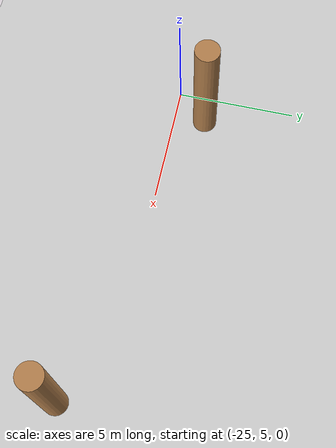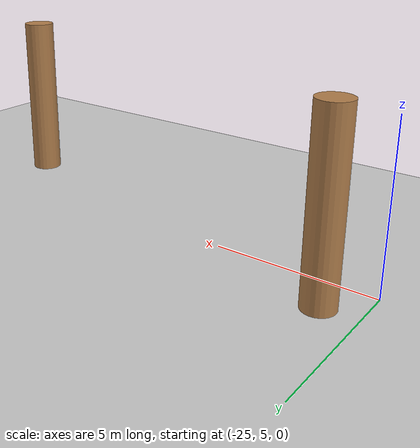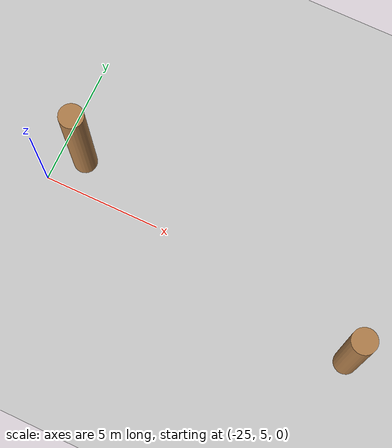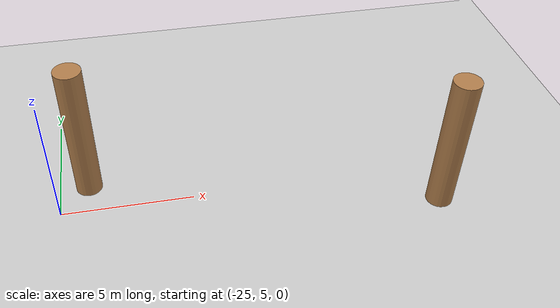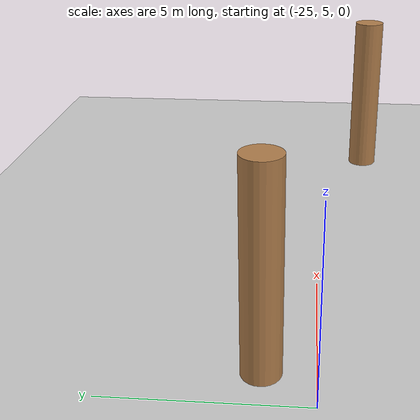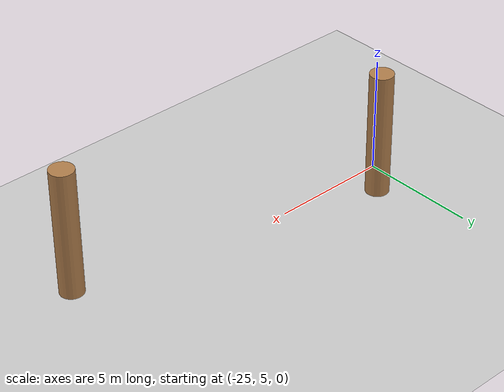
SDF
<sdf version="1.6">
 <world name="default">
  <model name="ground_plane">
   <static>1</static>
   <link name="link">
    <collision name="collision">
     <geometry><plane><normal>0 0 1</normal><size>100 100</size></plane></geometry>
     <surface><friction><ode><mu>100</mu><mu2>50</mu2></ode></friction></surface>
    </collision>
    <visual name="visual">
     <cast_shadows>0</cast_shadows>
     <geometry><plane><normal>0 0 1</normal><size>100 100</size></plane></geometry>
     <material>
      <script><uri>file://media/materials/scripts/gazebo.material</uri><name>Gazebo/Grey</name></script>
     </material>
    </visual>
   </link>
  </model>
  <model name="WoodPillars_13">
   <link name="link_clone_11">
    <inertial>
     <mass>1</mass>
     <inertia><ixx>0.145833</ixx><ixy>0</ixy><ixz>0</ixz><iyy>0.145833</iyy><iyz>0</iyz><izz>0.125</izz></inertia>
    </inertial>
    <pose>20.1245 17.4079 -2e-06 0 -0 -0.001289</pose>
    <visual name="visual">
     <geometry><cylinder><radius>0.5</radius><length>5.50507</length></cylinder></geometry>
     <material>
      <script><name>Gazebo/Wood</name><uri>file://media/materials/scripts/gazebo.material</uri></script>
      <shader type="pixel"/>
     </material>
    </visual>
    <collision name="collision">
     <geometry><cylinder><radius>0.5</radius><length>5.50507</length></cylinder></geometry>
     <surface>
      <friction>
       <ode><mu>1</mu><mu2>1</mu2><fdir1>0 0 0</fdir1><slip1>0</slip1><slip2>0</slip2></ode>
       <torsional>
        <coefficient>1</coefficient>
        <patch_radius>0</patch_radius>
        <surface_radius>0</surface_radius>
        <use_patch_radius>1</use_patch_radius>
        <ode><slip>0</slip></ode>
       </torsional>
      </friction>
      <bounce><restitution_coefficient>0</restitution_coefficient><threshold>1e+06</threshold></bounce>
      <contact>
       <collide_without_contact>0</collide_without_contact>
       <collide_without_contact_bitmask>1</collide_without_contact_bitmask>
       <collide_bitmask>1</collide_bitmask>
       <ode>
        <soft_cfm>0</soft_cfm>
        <soft_erp>0.2</soft_erp>
        <kp>1e+13</kp>
        <kd>1</kd>
        <max_vel>0.01</max_vel>
        <min_depth>0</min_depth>
       </ode>
       <bullet>
        <split_impulse>1</split_impulse>
        <split_impulse_penetration_threshold>-0.01</split_impulse_penetration_threshold>
        <soft_cfm>0</soft_cfm>
        <soft_erp>0.2</soft_erp>
        <kp>1e+13</kp>
        <kd>1</kd>
       </bullet>
      </contact>
     </surface>
    </collision>
   </link>
   <link name="link_clone_5">
    <inertial>
     <mass>1</mass>
     <inertia><ixx>0.145833</ixx><ixy>0</ixy><ixz>0</ixz><iyy>0.145833</iyy><iyz>0</iyz><izz>0.125</izz></inertia>
    </inertial>
    <pose>33.2189 14.316 -3e-06 0 -0 -0.001289</pose>
    <visual name="visual">
     <geometry><cylinder><radius>0.5</radius><length>5.50507</length></cylinder></geometry>
     <material>
      <script><name>Gazebo/Wood</name><uri>file://media/materials/scripts/gazebo.material</uri></script>
      <shader type="pixel"/>
     </material>
    </visual>
    <collision name="collision">
     <geometry><cylinder><radius>0.5</radius><length>5.50507</length></cylinder></geometry>
     <surface>
      <friction>
       <ode><mu>1</mu><mu2>1</mu2><fdir1>0 0 0</fdir1><slip1>0</slip1><slip2>0</slip2></ode>
       <torsional>
        <coefficient>1</coefficient>
        <patch_radius>0</patch_radius>
        <surface_radius>0</surface_radius>
        <use_patch_radius>1</use_patch_radius>
        <ode><slip>0</slip></ode>
       </torsional>
      </friction>
      <bounce><restitution_coefficient>0</restitution_coefficient><threshold>1e+06</threshold></bounce>
      <contact>
       <collide_without_contact>0</collide_without_contact>
       <collide_without_contact_bitmask>1</collide_without_contact_bitmask>
       <collide_bitmask>1</collide_bitmask>
       <ode>
        <soft_cfm>0</soft_cfm>
        <soft_erp>0.2</soft_erp>
        <kp>1e+13</kp>
        <kd>1</kd>
        <max_vel>0.01</max_vel>
        <min_depth>0</min_depth>
       </ode>
       <bullet>
        <split_impulse>1</split_impulse>
        <split_impulse_penetration_threshold>-0.01</split_impulse_penetration_threshold>
        <soft_cfm>0</soft_cfm>
        <soft_erp>0.2</soft_erp>
        <kp>1e+13</kp>
        <kd>1</kd>
       </bullet>
      </contact>
     </surface>
    </collision>
   </link>
   <static>0</static>
   <pose>-43.9989 -11.1335 2.75253 0 -0 0.001424</pose>
  </model>
 </world>
</sdf>
